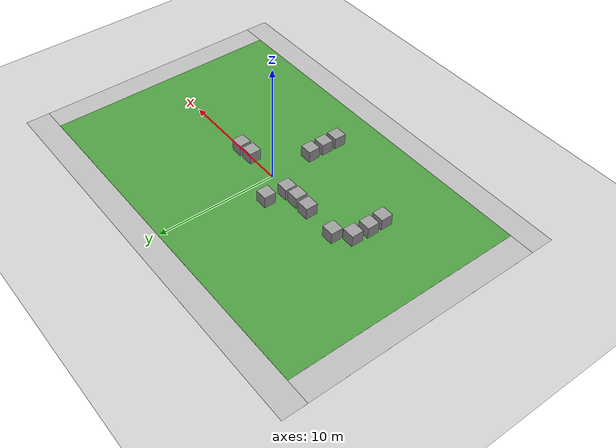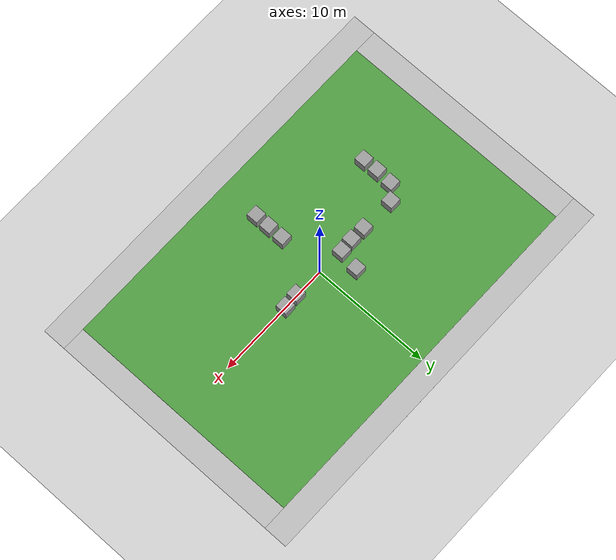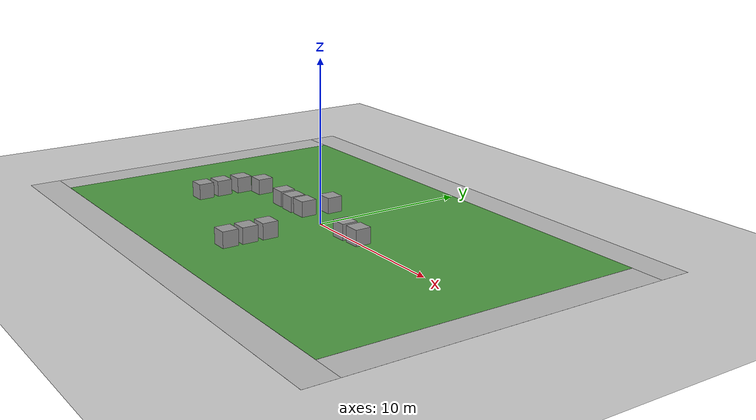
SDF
<sdf version="1.6">
 <world name="default">
  <plugin name="ardupilot_sitl_gazebo_plugin" filename="libardupilot_sitl_gazebo_plugin_rover.so">
   <UAV_MODEL>rover</UAV_MODEL>
  </plugin>
  <light name="sun" type="directional">
   <pose>0 0 10 0 -0 0</pose>
   <diffuse>0.8 0.8 0.8 1</diffuse>
   <specular>0.2 0.2 0.2 1</specular>
   <attenuation>
    <range>1000</range>
    <constant>0.9</constant>
    <linear>0.01</linear>
    <quadratic>0.001</quadratic>
   </attenuation>
   <direction>-0.5 0.1 -0.9</direction>
  </light>
  <model name="ground_plane">
   <static>1</static>
   <link name="link">
    <collision name="collision">
     <geometry><plane><normal>0 0 1</normal><size>100 100</size></plane></geometry>
     <surface><friction><ode><mu>100</mu><mu2>50</mu2></ode></friction></surface>
    </collision>
    <visual name="visual">
     <cast_shadows>0</cast_shadows>
     <geometry><plane><normal>0 0 1</normal><size>100 100</size></plane></geometry>
     <material>
      <script><uri>file://media/materials/scripts/gazebo.material</uri><name>Gazebo/Grey</name></script>
     </material>
    </visual>
   </link>
  </model>
  <gravity>0 0 -9.8</gravity>
  <magnetic_field>6e-06 2.3e-05 -4.2e-05</magnetic_field>
  <atmosphere type="adiabatic"/>
  <physics name="default_physics" default="0" type="ode">
   <max_step_size>0.001</max_step_size>
   <real_time_factor>1</real_time_factor>
   <real_time_update_rate>1000</real_time_update_rate>
  </physics>
  <scene><ambient>0.4 0.4 0.4 1</ambient><background>0.7 0.7 0.7 1</background><shadows>1</shadows></scene>
  <spherical_coordinates>
   <surface_model>EARTH_WGS84</surface_model>
   <latitude_deg>0</latitude_deg>
   <longitude_deg>0</longitude_deg>
   <elevation>0</elevation>
   <heading_deg>0</heading_deg>
  </spherical_coordinates>
  <model name="robocup_3d_field">
   <static>1</static>
   <link name="field">
    <pose>0 0 0.01 0 -0 0</pose>
    <collision name="collision">
     <geometry><plane><normal>0 0 1</normal><size>30 20</size></plane></geometry>
     <surface><friction><ode><mu>100</mu><mu2>50</mu2></ode></friction></surface>
    </collision>
    <visual name="base1">
     <pose>0 11 0.001 0 -0 0</pose>
     <cast_shadows>0</cast_shadows>
     <geometry><plane><normal>0 0 1</normal><size>34 2</size></plane></geometry>
     <material>
      <script>
       <uri>model://robocup_3Dsim_field/materials/scripts/</uri>
       <uri>model://robocup_3Dsim_field/materials/textures/</uri>
       <name>RoboCup/FieldBorder</name>
      </script>
     </material>
    </visual>
    <visual name="base2">
     <pose>0 -11 0.001 0 -0 0</pose>
     <cast_shadows>0</cast_shadows>
     <geometry><plane><normal>0 0 1</normal><size>34 2</size></plane></geometry>
     <material>
      <script>
       <uri>model://robocup_3Dsim_field/materials/scripts/</uri>
       <uri>model://robocup_3Dsim_field/materials/textures/</uri>
       <name>RoboCup/FieldBorder</name>
      </script>
     </material>
    </visual>
    <visual name="base3">
     <pose>16 0 0.001 0 -0 0</pose>
     <cast_shadows>0</cast_shadows>
     <geometry><plane><normal>0 0 1</normal><size>2 20</size></plane></geometry>
     <material>
      <script>
       <uri>model://robocup_3Dsim_field/materials/scripts/</uri>
       <uri>model://robocup_3Dsim_field/materials/textures/</uri>
       <name>RoboCup/FieldBorder</name>
      </script>
     </material>
    </visual>
    <visual name="base4">
     <pose>-16 0 0.001 0 -0 0</pose>
     <cast_shadows>0</cast_shadows>
     <geometry><plane><normal>0 0 1</normal><size>2 20</size></plane></geometry>
     <material>
      <script>
       <uri>model://robocup_3Dsim_field/materials/scripts/</uri>
       <uri>model://robocup_3Dsim_field/materials/textures/</uri>
       <name>RoboCup/FieldBorder</name>
      </script>
     </material>
    </visual>
    <visual name="carpet">
     <cast_shadows>0</cast_shadows>
     <geometry><plane><normal>0 0 1</normal><size>30 20</size></plane></geometry>
     <material>
      <script>
       <uri>model://robocup_3Dsim_field/materials/scripts/</uri>
       <uri>model://robocup_3Dsim_field/materials/textures/</uri>
       <name>RoboCup/Grass</name>
      </script>
     </material>
    </visual>
   </link>
   <pose>-0.031698 0.111229 0 0 -0 0</pose>
  </model>
  <model name="unit_box">
   <pose>2.60711 0.016027 0.51 0 -0 0</pose>
   <link name="link">
    <inertial>
     <mass>1</mass>
     <inertia>
      <ixx>0.166667</ixx>
      <ixy>0</ixy>
      <ixz>0</ixz>
      <iyy>0.166667</iyy>
      <iyz>0</iyz>
      <izz>0.166667</izz>
     </inertia>
    </inertial>
    <collision name="collision"><geometry><box><size>1 1 1</size></box></geometry></collision>
    <visual name="visual">
     <geometry><box><size>1 1 1</size></box></geometry>
     <material>
      <script><name>Gazebo/Grey</name><uri>file://media/materials/scripts/gazebo.material</uri></script>
     </material>
    </visual>
   </link>
  </model>
  <model name="unit_box_0">
   <pose>3.83866 0.081564 0.51 0 -0 0</pose>
   <link name="link">
    <inertial>
     <mass>1</mass>
     <inertia>
      <ixx>0.166667</ixx>
      <ixy>0</ixy>
      <ixz>0</ixz>
      <iyy>0.166667</iyy>
      <iyz>0</iyz>
      <izz>0.166667</izz>
     </inertia>
    </inertial>
    <collision name="collision"><geometry><box><size>1 1 1</size></box></geometry></collision>
    <visual name="visual">
     <geometry><box><size>1 1 1</size></box></geometry>
     <material>
      <script><name>Gazebo/Grey</name><uri>file://media/materials/scripts/gazebo.material</uri></script>
     </material>
    </visual>
   </link>
  </model>
  <model name="unit_box_1">
   <pose>0.050106 -3.73716 0.51 0 -0 0</pose>
   <link name="link">
    <inertial>
     <mass>1</mass>
     <inertia>
      <ixx>0.166667</ixx>
      <ixy>0</ixy>
      <ixz>0</ixz>
      <iyy>0.166667</iyy>
      <iyz>0</iyz>
      <izz>0.166667</izz>
     </inertia>
    </inertial>
    <collision name="collision"><geometry><box><size>1 1 1</size></box></geometry></collision>
    <visual name="visual">
     <geometry><box><size>1 1 1</size></box></geometry>
     <material>
      <script><name>Gazebo/Grey</name><uri>file://media/materials/scripts/gazebo.material</uri></script>
     </material>
    </visual>
   </link>
  </model>
  <model name="unit_box_2">
   <pose>0.057664 -5.05708 0.51 0 -0 0</pose>
   <link name="link">
    <inertial>
     <mass>1</mass>
     <inertia>
      <ixx>0.166667</ixx>
      <ixy>0</ixy>
      <ixz>0</ixz>
      <iyy>0.166667</iyy>
      <iyz>0</iyz>
      <izz>0.166667</izz>
     </inertia>
    </inertial>
    <collision name="collision"><geometry><box><size>1 1 1</size></box></geometry></collision>
    <visual name="visual">
     <geometry><box><size>1 1 1</size></box></geometry>
     <material>
      <script><name>Gazebo/Grey</name><uri>file://media/materials/scripts/gazebo.material</uri></script>
     </material>
    </visual>
   </link>
  </model>
  <model name="unit_box_3">
   <pose>0.051684 -6.31696 0.51 0 -0 0</pose>
   <link name="link">
    <inertial>
     <mass>1</mass>
     <inertia>
      <ixx>0.166667</ixx>
      <ixy>0</ixy>
      <ixz>0</ixz>
      <iyy>0.166667</iyy>
      <iyz>0</iyz>
      <izz>0.166667</izz>
     </inertia>
    </inertial>
    <collision name="collision"><geometry><box><size>1 1 1</size></box></geometry></collision>
    <visual name="visual">
     <geometry><box><size>1 1 1</size></box></geometry>
     <material>
      <script><name>Gazebo/Grey</name><uri>file://media/materials/scripts/gazebo.material</uri></script>
     </material>
    </visual>
   </link>
  </model>
  <model name="unit_box_4">
   <pose>-3.28958 0.166998 0.51 0 -0 0</pose>
   <link name="link">
    <inertial>
     <mass>1</mass>
     <inertia>
      <ixx>0.166667</ixx>
      <ixy>0</ixy>
      <ixz>0</ixz>
      <iyy>0.166667</iyy>
      <iyz>0</iyz>
      <izz>0.166667</izz>
     </inertia>
    </inertial>
    <collision name="collision"><geometry><box><size>1 1 1</size></box></geometry></collision>
    <visual name="visual">
     <geometry><box><size>1 1 1</size></box></geometry>
     <material>
      <script><name>Gazebo/Grey</name><uri>file://media/materials/scripts/gazebo.material</uri></script>
     </material>
    </visual>
   </link>
  </model>
  <model name="unit_box_5">
   <pose>-2.1331 0.23732 0.51 0 -0 0</pose>
   <link name="link">
    <inertial>
     <mass>1</mass>
     <inertia>
      <ixx>0.166667</ixx>
      <ixy>0</ixy>
      <ixz>0</ixz>
      <iyy>0.166667</iyy>
      <iyz>0</iyz>
      <izz>0.166667</izz>
     </inertia>
    </inertial>
    <collision name="collision"><geometry><box><size>1 1 1</size></box></geometry></collision>
    <visual name="visual">
     <geometry><box><size>1 1 1</size></box></geometry>
     <material>
      <script><name>Gazebo/Grey</name><uri>file://media/materials/scripts/gazebo.material</uri></script>
     </material>
    </visual>
   </link>
  </model>
  <model name="unit_box_6">
   <pose>-4.55948 0.221643 0.51 0 -0 0</pose>
   <link name="link">
    <inertial>
     <mass>1</mass>
     <inertia>
      <ixx>0.166667</ixx>
      <ixy>0</ixy>
      <ixz>0</ixz>
      <iyy>0.166667</iyy>
      <iyz>0</iyz>
      <izz>0.166667</izz>
     </inertia>
    </inertial>
    <collision name="collision"><geometry><box><size>1 1 1</size></box></geometry></collision>
    <visual name="visual">
     <geometry><box><size>1 1 1</size></box></geometry>
     <material>
      <script><name>Gazebo/Grey</name><uri>file://media/materials/scripts/gazebo.material</uri></script>
     </material>
    </visual>
   </link>
  </model>
  <model name="unit_box_7">
   <pose>-7.48998 0.314605 0.51 0 -0 0</pose>
   <link name="link">
    <inertial>
     <mass>1</mass>
     <inertia>
      <ixx>0.166667</ixx>
      <ixy>0</ixy>
      <ixz>0</ixz>
      <iyy>0.166667</iyy>
      <iyz>0</iyz>
      <izz>0.166667</izz>
     </inertia>
    </inertial>
    <collision name="collision"><geometry><box><size>1 1 1</size></box></geometry></collision>
    <visual name="visual">
     <geometry><box><size>1 1 1</size></box></geometry>
     <material>
      <script><name>Gazebo/Grey</name><uri>file://media/materials/scripts/gazebo.material</uri></script>
     </material>
    </visual>
   </link>
  </model>
  <model name="unit_box_8">
   <pose>-8.55115 -0.663787 0.51 0 -0 0</pose>
   <link name="link">
    <inertial>
     <mass>1</mass>
     <inertia>
      <ixx>0.166667</ixx>
      <ixy>0</ixy>
      <ixz>0</ixz>
      <iyy>0.166667</iyy>
      <iyz>0</iyz>
      <izz>0.166667</izz>
     </inertia>
    </inertial>
    <collision name="collision"><geometry><box><size>1 1 1</size></box></geometry></collision>
    <visual name="visual">
     <geometry><box><size>1 1 1</size></box></geometry>
     <material>
      <script><name>Gazebo/Grey</name><uri>file://media/materials/scripts/gazebo.material</uri></script>
     </material>
    </visual>
   </link>
  </model>
  <model name="unit_box_9">
   <pose>-8.6257 -2.07007 0.51 0 -0 0</pose>
   <link name="link">
    <inertial>
     <mass>1</mass>
     <inertia>
      <ixx>0.166667</ixx>
      <ixy>0</ixy>
      <ixz>0</ixz>
      <iyy>0.166667</iyy>
      <iyz>0</iyz>
      <izz>0.166667</izz>
     </inertia>
    </inertial>
    <collision name="collision"><geometry><box><size>1 1 1</size></box></geometry></collision>
    <visual name="visual">
     <geometry><box><size>1 1 1</size></box></geometry>
     <material>
      <script><name>Gazebo/Grey</name><uri>file://media/materials/scripts/gazebo.material</uri></script>
     </material>
    </visual>
   </link>
  </model>
  <model name="unit_box_10">
   <pose>-8.60478 -3.36708 0.51 0 -0 0</pose>
   <link name="link">
    <inertial>
     <mass>1</mass>
     <inertia>
      <ixx>0.166667</ixx>
      <ixy>0</ixy>
      <ixz>0</ixz>
      <iyy>0.166667</iyy>
      <iyz>0</iyz>
      <izz>0.166667</izz>
     </inertia>
    </inertial>
    <collision name="collision"><geometry><box><size>1 1 1</size></box></geometry></collision>
    <visual name="visual">
     <geometry><box><size>1 1 1</size></box></geometry>
     <material>
      <script><name>Gazebo/Grey</name><uri>file://media/materials/scripts/gazebo.material</uri></script>
     </material>
    </visual>
   </link>
  </model>
  <model name="unit_box_11">
   <pose>-1.84808 1.93688 0.51 0 -0 0</pose>
   <link name="link">
    <inertial>
     <mass>1</mass>
     <inertia>
      <ixx>0.166667</ixx>
      <ixy>0</ixy>
      <ixz>0</ixz>
      <iyy>0.166667</iyy>
      <iyz>0</iyz>
      <izz>0.166667</izz>
     </inertia>
    </inertial>
    <collision name="collision"><geometry><box><size>1 1 1</size></box></geometry></collision>
    <visual name="visual">
     <geometry><box><size>1 1 1</size></box></geometry>
     <material>
      <script><name>Gazebo/Grey</name><uri>file://media/materials/scripts/gazebo.material</uri></script>
     </material>
    </visual>
   </link>
  </model>
 </world>
</sdf>
